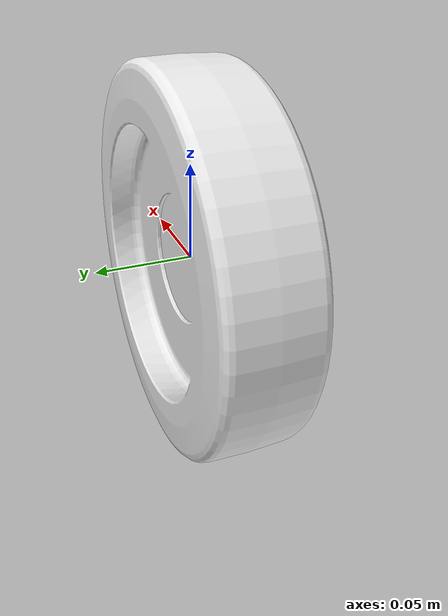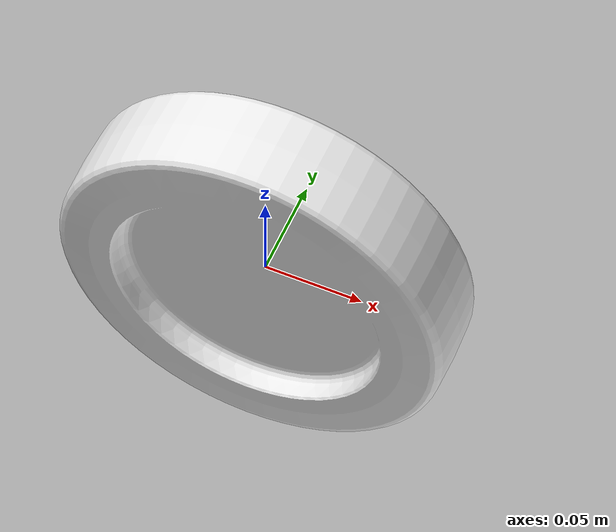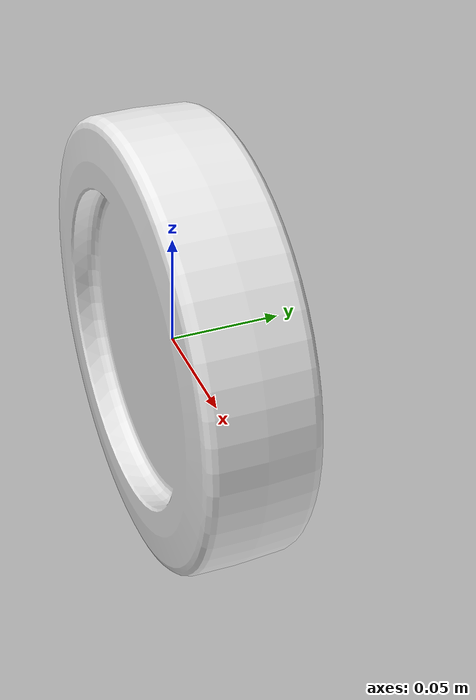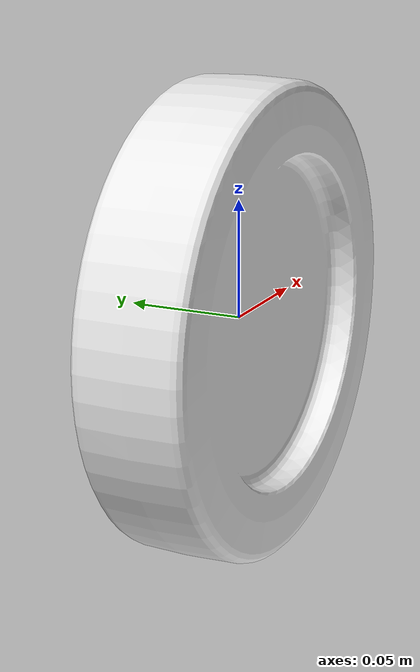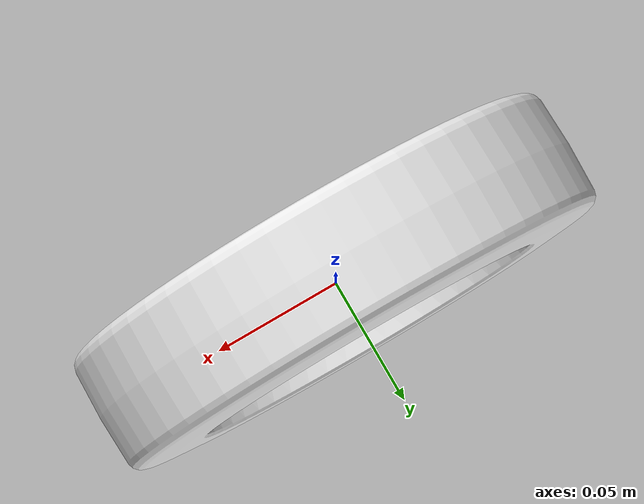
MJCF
<mujoco model="WHEEL">
  <default>
    <default class="visual">
      <geom group="2" type="mesh" contype="0" conaffinity="0"/>
    </default>
    <default class="collision">
      <geom group="3" type="mesh"/>
    </default>
  </default>
  <asset>
    <material name="235,235,235" specular="1.0" shininess="0.2" rgba="0.921569 0.921569 0.921569 1.000000"/>
    <mesh file="WHEEL.obj"/>
    <mesh file="WHEEL_collision_0.obj"/>
    <mesh file="WHEEL_collision_1.obj"/>
    <mesh file="WHEEL_collision_2.obj"/>
    <mesh file="WHEEL_collision_3.obj"/>
    <mesh file="WHEEL_collision_4.obj"/>
    <mesh file="WHEEL_collision_5.obj"/>
    <mesh file="WHEEL_collision_6.obj"/>
    <mesh file="WHEEL_collision_7.obj"/>
    <mesh file="WHEEL_collision_8.obj"/>
    <mesh file="WHEEL_collision_9.obj"/>
    <mesh file="WHEEL_collision_10.obj"/>
    <mesh file="WHEEL_collision_11.obj"/>
    <mesh file="WHEEL_collision_12.obj"/>
    <mesh file="WHEEL_collision_13.obj"/>
    <mesh file="WHEEL_collision_14.obj"/>
    <mesh file="WHEEL_collision_15.obj"/>
    <mesh file="WHEEL_collision_16.obj"/>
    <mesh file="WHEEL_collision_17.obj"/>
    <mesh file="WHEEL_collision_18.obj"/>
    <mesh file="WHEEL_collision_19.obj"/>
    <mesh file="WHEEL_collision_20.obj"/>
    <mesh file="WHEEL_collision_21.obj"/>
    <mesh file="WHEEL_collision_22.obj"/>
    <mesh file="WHEEL_collision_23.obj"/>
    <mesh file="WHEEL_collision_24.obj"/>
    <mesh file="WHEEL_collision_25.obj"/>
    <mesh file="WHEEL_collision_26.obj"/>
    <mesh file="WHEEL_collision_27.obj"/>
    <mesh file="WHEEL_collision_28.obj"/>
    <mesh file="WHEEL_collision_29.obj"/>
    <mesh file="WHEEL_collision_30.obj"/>
    <mesh file="WHEEL_collision_31.obj"/>
    <mesh file="WHEEL_collision_32.obj"/>
    <mesh file="WHEEL_collision_33.obj"/>
    <mesh file="WHEEL_collision_34.obj"/>
    <mesh file="WHEEL_collision_35.obj"/>
    <mesh file="WHEEL_collision_36.obj"/>
    <mesh file="WHEEL_collision_37.obj"/>
  </asset>
  <worldbody>
    <body name="WHEEL">
      <geom material="235,235,235" mesh="WHEEL" class="visual"/>
      <geom mesh="WHEEL_collision_0" rgba="0.5752187170342844 0.4501427622070635 0.12177512513826183 1" class="collision"/>
      <geom mesh="WHEEL_collision_1" rgba="0.2802369936745065 0.3619661323878687 0.038931433172797125 1" class="collision"/>
      <geom mesh="WHEEL_collision_2" rgba="0.5570103949654748 0.3617765508907155 0.4031056238023848 1" class="collision"/>
      <geom mesh="WHEEL_collision_3" rgba="0.5768924522206648 0.5536378767309811 0.4131503705667481 1" class="collision"/>
      <geom mesh="WHEEL_collision_4" rgba="0.5563886064152684 0.6140843445986883 0.7869472292305242 1" class="collision"/>
      <geom mesh="WHEEL_collision_5" rgba="0.13640243871753288 0.9817670218312823 0.5247771492711631 1" class="collision"/>
      <geom mesh="WHEEL_collision_6" rgba="0.01650705682319975 0.5317726395279694 0.08798672350961168 1" class="collision"/>
      <geom mesh="WHEEL_collision_7" rgba="0.2880127026012437 0.895121353898235 0.5529223246892576 1" class="collision"/>
      <geom mesh="WHEEL_collision_8" rgba="0.020305744232274825 0.44212135162650057 0.9949817704723959 1" class="collision"/>
      <geom mesh="WHEEL_collision_9" rgba="0.8920978350864924 0.4473472567960024 0.5359875489715002 1" class="collision"/>
      <geom mesh="WHEEL_collision_10" rgba="0.1614412590867098 0.7429032643820003 0.6468205564464226 1" class="collision"/>
      <geom mesh="WHEEL_collision_11" rgba="0.5844367204630354 0.9018025895327842 0.5261903576823745 1" class="collision"/>
      <geom mesh="WHEEL_collision_12" rgba="0.08015165918396105 0.8171710767486843 0.9946358955710813 1" class="collision"/>
      <geom mesh="WHEEL_collision_13" rgba="0.6993010739738718 0.8332833332239001 0.42025221459219464 1" class="collision"/>
      <geom mesh="WHEEL_collision_14" rgba="0.6194678243741225 0.5288363513333973 0.7001117695434285 1" class="collision"/>
      <geom mesh="WHEEL_collision_15" rgba="0.8062619374280119 0.9775277942901578 0.8731561703048297 1" class="collision"/>
      <geom mesh="WHEEL_collision_16" rgba="0.2364819359182867 0.8410130920535115 0.35883055318263013 1" class="collision"/>
      <geom mesh="WHEEL_collision_17" rgba="0.7857844696863963 0.019432158788340814 0.5726079175282008 1" class="collision"/>
      <geom mesh="WHEEL_collision_18" rgba="0.7759216437691195 0.5195690001752841 0.43686450548215916 1" class="collision"/>
      <geom mesh="WHEEL_collision_19" rgba="0.16906697550008032 0.1241698294340624 0.5003842810096816 1" class="collision"/>
      <geom mesh="WHEEL_collision_20" rgba="0.043757310799325655 0.9451295947747476 0.922655571660068 1" class="collision"/>
      <geom mesh="WHEEL_collision_21" rgba="0.18299778218472762 0.7240784270571299 0.6436132539078334 1" class="collision"/>
      <geom mesh="WHEEL_collision_22" rgba="0.44966968212992664 0.7124041629541117 0.24465496037949142 1" class="collision"/>
      <geom mesh="WHEEL_collision_23" rgba="0.11395437716987245 0.37523741605175154 0.1745621504638485 1" class="collision"/>
      <geom mesh="WHEEL_collision_24" rgba="0.044915222237898456 0.8690149055367147 0.07307341765061659 1" class="collision"/>
      <geom mesh="WHEEL_collision_25" rgba="0.389513409551009 0.18320704951501643 0.5325037831620598 1" class="collision"/>
      <geom mesh="WHEEL_collision_26" rgba="0.9855387080548003 0.9273777311224124 0.24653936683931166 1" class="collision"/>
      <geom mesh="WHEEL_collision_27" rgba="0.1892531599875511 0.11988141527183327 0.48551105194540733 1" class="collision"/>
      <geom mesh="WHEEL_collision_28" rgba="0.4288801310790048 0.8072466860461786 0.8698393260390297 1" class="collision"/>
      <geom mesh="WHEEL_collision_29" rgba="0.9102263252554305 0.7857569757969216 0.6077150482744098 1" class="collision"/>
      <geom mesh="WHEEL_collision_30" rgba="0.6472111119887154 0.8512320119940485 0.2796834431245072 1" class="collision"/>
      <geom mesh="WHEEL_collision_31" rgba="0.4059547280625133 0.20066963125819826 0.13882344209693254 1" class="collision"/>
      <geom mesh="WHEEL_collision_32" rgba="0.9480939198219537 0.05578415663641856 0.4641937232145128 1" class="collision"/>
      <geom mesh="WHEEL_collision_33" rgba="0.42265309716460375 0.2798256358827089 0.32806459485326933 1" class="collision"/>
      <geom mesh="WHEEL_collision_34" rgba="0.7520281542050066 0.779967829636912 0.5960581064343313 1" class="collision"/>
      <geom mesh="WHEEL_collision_35" rgba="0.10395062137006339 0.3180495559575015 0.3938632144411477 1" class="collision"/>
      <geom mesh="WHEEL_collision_36" rgba="0.6665173143845771 0.27839291587095105 0.44234806730119736 1" class="collision"/>
      <geom mesh="WHEEL_collision_37" rgba="0.6815228336973594 0.7287167517691782 0.9800948827855603 1" class="collision"/>
    </body>
  </worldbody>
</mujoco>
